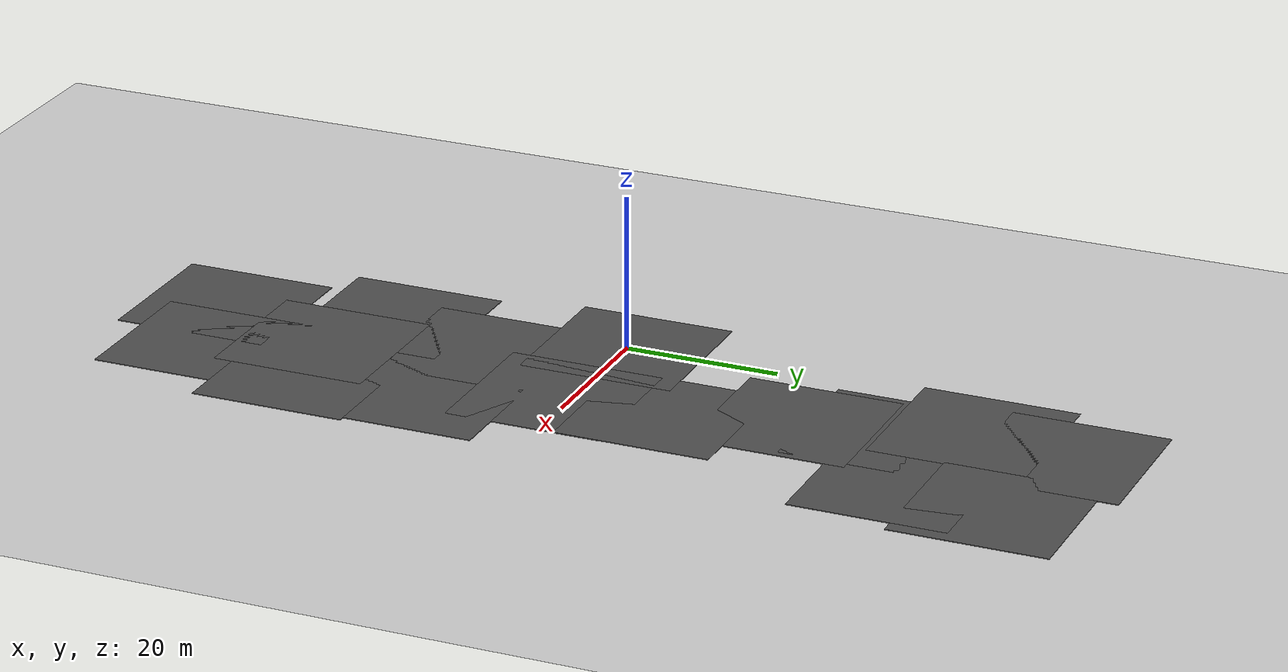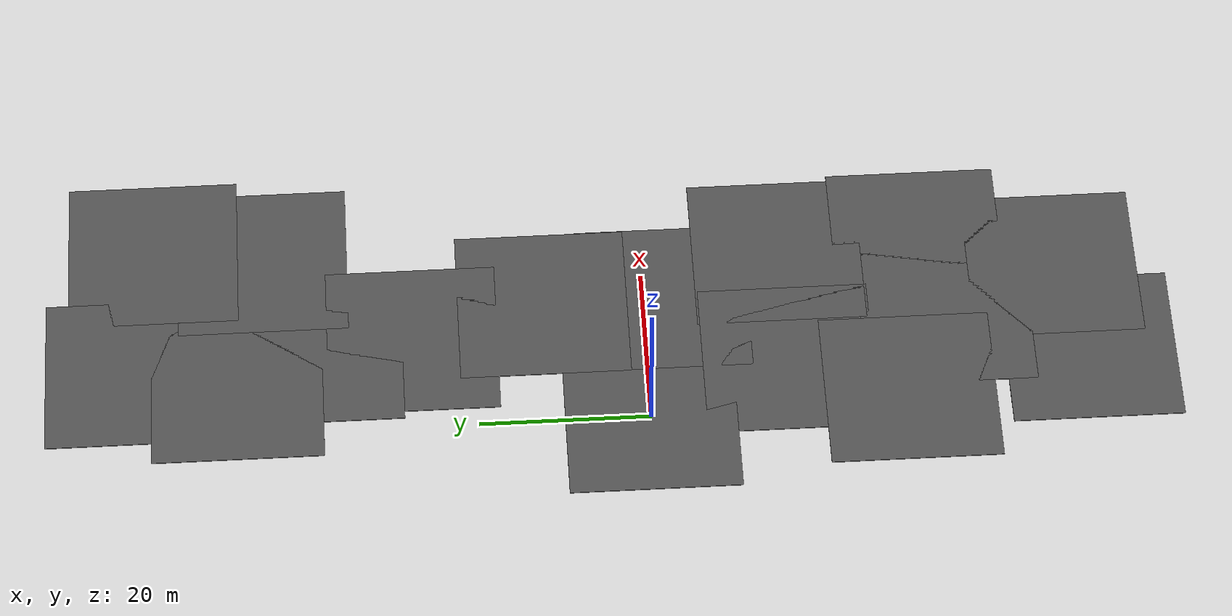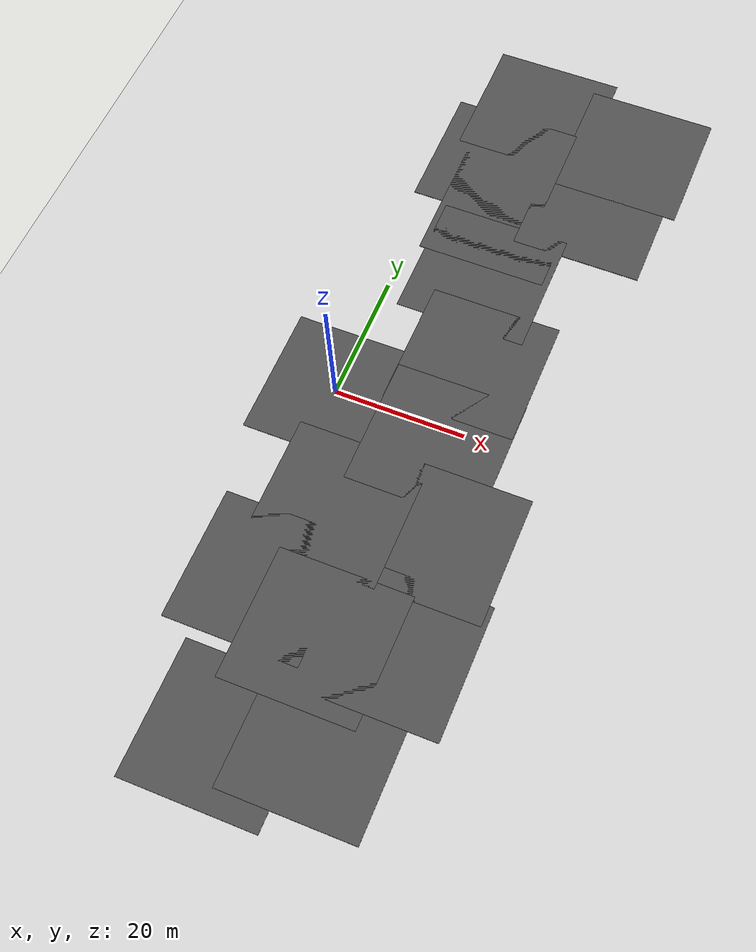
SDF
<sdf version="1.7">
 <world name="default">
  <model name="ground_plane">
   <static>1</static>
   <link name="link">
    <collision name="collision">
     <geometry><plane><normal>0 0 1</normal><size>5000 5000</size></plane></geometry>
     <surface>
      <contact><collide_bitmask>65535</collide_bitmask></contact>
      <friction><ode><mu>100</mu><mu2>50</mu2></ode></friction>
     </surface>
    </collision>
    <visual name="visual">
     <cast_shadows>0</cast_shadows>
     <geometry><plane><normal>0 0 1</normal><size>5000 5000</size></plane></geometry>
     <material>
      <script><uri>file://media/materials/scripts/gazebo.material</uri><name>Gazebo/Grey</name></script>
     </material>
    </visual>
   </link>
  </model>
  <model name="asphalt_plane">
   <static>1</static>
   <link name="link">
    <collision name="collision"><geometry><box><size>20 20 0.1</size></box></geometry></collision>
    <visual name="visual">
     <cast_shadows>0</cast_shadows>
     <geometry><box><size>20 20 0.1</size></box></geometry>
     <material>
      <script>
       <uri>model://asphalt_plane/materials/scripts</uri>
       <uri>model://asphalt_plane/materials/textures</uri>
       <name>vrc/asphalt</name>
      </script>
     </material>
    </visual>
   </link>
  </model>
  <model name="asphalt_plane_clone_12">
   <static>1</static>
   <link name="link">
    <collision name="collision"><geometry><box><size>20 20 0.1</size></box></geometry></collision>
    <visual name="visual">
     <cast_shadows>0</cast_shadows>
     <geometry><box><size>20 20 0.1</size></box></geometry>
     <material>
      <script>
       <uri>model://asphalt_plane/materials/scripts</uri>
       <uri>model://asphalt_plane/materials/textures</uri>
       <name>vrc/asphalt</name>
      </script>
     </material>
    </visual>
   </link>
   <pose>6.77594 48.0008 0 0 -0 0</pose>
  </model>
  <model name="asphalt_plane_clone_13">
   <static>1</static>
   <link name="link">
    <collision name="collision"><geometry><box><size>20 20 0.1</size></box></geometry></collision>
    <visual name="visual">
     <cast_shadows>0</cast_shadows>
     <geometry><box><size>20 20 0.1</size></box></geometry>
     <material>
      <script>
       <uri>model://asphalt_plane/materials/scripts</uri>
       <uri>model://asphalt_plane/materials/textures</uri>
       <name>vrc/asphalt</name>
      </script>
     </material>
    </visual>
   </link>
   <pose>9.50871 60.3563 0 0 -0 0</pose>
  </model>
  <model name="asphalt_plane_clone_22">
   <static>1</static>
   <link name="link">
    <collision name="collision"><geometry><box><size>20 20 0.1</size></box></geometry></collision>
    <visual name="visual">
     <cast_shadows>0</cast_shadows>
     <geometry><box><size>20 20 0.1</size></box></geometry>
     <material>
      <script>
       <uri>model://asphalt_plane/materials/scripts</uri>
       <uri>model://asphalt_plane/materials/textures</uri>
       <name>vrc/asphalt</name>
      </script>
     </material>
    </visual>
   </link>
   <pose>7.4179 -16.4558 0 0 -0 0</pose>
  </model>
  <model name="asphalt_plane_clone_24">
   <static>1</static>
   <link name="link">
    <collision name="collision"><geometry><box><size>20 20 0.1</size></box></geometry></collision>
    <visual name="visual">
     <cast_shadows>0</cast_shadows>
     <geometry><box><size>20 20 0.1</size></box></geometry>
     <material>
      <script>
       <uri>model://asphalt_plane/materials/scripts</uri>
       <uri>model://asphalt_plane/materials/textures</uri>
       <name>vrc/asphalt</name>
      </script>
     </material>
    </visual>
   </link>
   <pose>2.50447 -30.4018 0 0 -0 0</pose>
  </model>
  <model name="asphalt_plane_clone_27">
   <static>1</static>
   <link name="link">
    <collision name="collision"><geometry><box><size>20 20 0.1</size></box></geometry></collision>
    <visual name="visual">
     <cast_shadows>0</cast_shadows>
     <geometry><box><size>20 20 0.1</size></box></geometry>
     <material>
      <script>
       <uri>model://asphalt_plane/materials/scripts</uri>
       <uri>model://asphalt_plane/materials/textures</uri>
       <name>vrc/asphalt</name>
      </script>
     </material>
    </visual>
   </link>
   <pose>23.4608 -32.9955 0 0 -0 0</pose>
  </model>
  <model name="asphalt_plane_clone_28">
   <static>1</static>
   <link name="link">
    <collision name="collision"><geometry><box><size>20 20 0.1</size></box></geometry></collision>
    <visual name="visual">
     <cast_shadows>0</cast_shadows>
     <geometry><box><size>20 20 0.1</size></box></geometry>
     <material>
      <script>
       <uri>model://asphalt_plane/materials/scripts</uri>
       <uri>model://asphalt_plane/materials/textures</uri>
       <name>vrc/asphalt</name>
      </script>
     </material>
    </visual>
   </link>
   <pose>12.9405 -35.4666 0 0 -0 0</pose>
  </model>
  <model name="asphalt_plane_clone_29">
   <static>1</static>
   <link name="link">
    <collision name="collision"><geometry><box><size>20 20 0.1</size></box></geometry></collision>
    <visual name="visual">
     <cast_shadows>0</cast_shadows>
     <geometry><box><size>20 20 0.1</size></box></geometry>
     <material>
      <script>
       <uri>model://asphalt_plane/materials/scripts</uri>
       <uri>model://asphalt_plane/materials/textures</uri>
       <name>vrc/asphalt</name>
      </script>
     </material>
    </visual>
   </link>
   <pose>22.7498 -16.2147 0 0 -0 0</pose>
  </model>
  <model name="asphalt_plane_clone_30">
   <static>1</static>
   <link name="link">
    <collision name="collision"><geometry><box><size>20 20 0.1</size></box></geometry></collision>
    <visual name="visual">
     <cast_shadows>0</cast_shadows>
     <geometry><box><size>20 20 0.1</size></box></geometry>
     <material>
      <script>
       <uri>model://asphalt_plane/materials/scripts</uri>
       <uri>model://asphalt_plane/materials/textures</uri>
       <name>vrc/asphalt</name>
      </script>
     </material>
    </visual>
   </link>
   <pose>16.7436 -2.34253 0 0 -0 0</pose>
  </model>
  <model name="asphalt_plane_clone_31">
   <static>1</static>
   <link name="link">
    <collision name="collision"><geometry><box><size>20 20 0.1</size></box></geometry></collision>
    <visual name="visual">
     <cast_shadows>0</cast_shadows>
     <geometry><box><size>20 20 0.1</size></box></geometry>
     <material>
      <script>
       <uri>model://asphalt_plane/materials/scripts</uri>
       <uri>model://asphalt_plane/materials/textures</uri>
       <name>vrc/asphalt</name>
      </script>
     </material>
    </visual>
   </link>
   <pose>16.6715 11.9135 0 0 -0 0</pose>
  </model>
  <model name="asphalt_plane_clone_32">
   <static>1</static>
   <link name="link">
    <collision name="collision"><geometry><box><size>20 20 0.1</size></box></geometry></collision>
    <visual name="visual">
     <cast_shadows>0</cast_shadows>
     <geometry><box><size>20 20 0.1</size></box></geometry>
     <material>
      <script>
       <uri>model://asphalt_plane/materials/scripts</uri>
       <uri>model://asphalt_plane/materials/textures</uri>
       <name>vrc/asphalt</name>
      </script>
     </material>
    </visual>
   </link>
   <pose>12.3811 27.4008 0 0 -0 0</pose>
  </model>
  <model name="asphalt_plane_clone_33">
   <static>1</static>
   <link name="link">
    <collision name="collision"><geometry><box><size>20 20 0.1</size></box></geometry></collision>
    <visual name="visual">
     <cast_shadows>0</cast_shadows>
     <geometry><box><size>20 20 0.1</size></box></geometry>
     <material>
      <script>
       <uri>model://asphalt_plane/materials/scripts</uri>
       <uri>model://asphalt_plane/materials/textures</uri>
       <name>vrc/asphalt</name>
      </script>
     </material>
    </visual>
   </link>
   <pose>11.4384 38.5824 0 0 -0 0</pose>
  </model>
  <model name="asphalt_plane_clone_34">
   <static>1</static>
   <link name="link">
    <collision name="collision"><geometry><box><size>20 20 0.1</size></box></geometry></collision>
    <visual name="visual">
     <cast_shadows>0</cast_shadows>
     <geometry><box><size>20 20 0.1</size></box></geometry>
     <material>
      <script>
       <uri>model://asphalt_plane/materials/scripts</uri>
       <uri>model://asphalt_plane/materials/textures</uri>
       <name>vrc/asphalt</name>
      </script>
     </material>
    </visual>
   </link>
   <pose>24.5563 44.8052 0 0 -0 0</pose>
  </model>
  <model name="asphalt_plane_clone_38">
   <static>1</static>
   <link name="link">
    <collision name="collision"><geometry><box><size>20 20 0.1</size></box></geometry></collision>
    <visual name="visual">
     <cast_shadows>0</cast_shadows>
     <geometry><box><size>20 20 0.1</size></box></geometry>
     <material>
      <script>
       <uri>model://asphalt_plane/materials/scripts</uri>
       <uri>model://asphalt_plane/materials/textures</uri>
       <name>vrc/asphalt</name>
      </script>
     </material>
    </visual>
   </link>
   <pose>26.3762 57.749 0 0 -0 0</pose>
  </model>
  <model name="asphalt_plane_clone_49">
   <static>1</static>
   <link name="link">
    <collision name="collision"><geometry><box><size>20 20 0.1</size></box></geometry></collision>
    <visual name="visual">
     <cast_shadows>0</cast_shadows>
     <geometry><box><size>20 20 0.1</size></box></geometry>
     <material>
      <script>
       <uri>model://asphalt_plane/materials/scripts</uri>
       <uri>model://asphalt_plane/materials/textures</uri>
       <name>vrc/asphalt</name>
      </script>
     </material>
    </visual>
   </link>
   <pose>19.1103 -48.7358 0 0 -0 0</pose>
  </model>
  <model name="asphalt_plane_clone_50">
   <static>1</static>
   <link name="link">
    <collision name="collision"><geometry><box><size>20 20 0.1</size></box></geometry></collision>
    <visual name="visual">
     <cast_shadows>0</cast_shadows>
     <geometry><box><size>20 20 0.1</size></box></geometry>
     <material>
      <script>
       <uri>model://asphalt_plane/materials/scripts</uri>
       <uri>model://asphalt_plane/materials/textures</uri>
       <name>vrc/asphalt</name>
      </script>
     </material>
    </visual>
   </link>
   <pose>7 -52 0 0 -0 0</pose>
  </model>
 </world>
</sdf>
